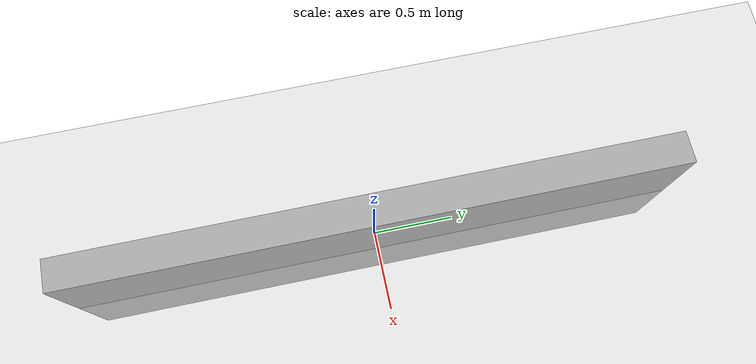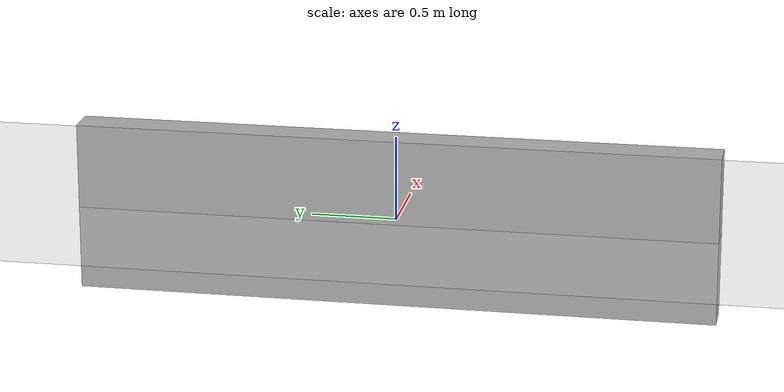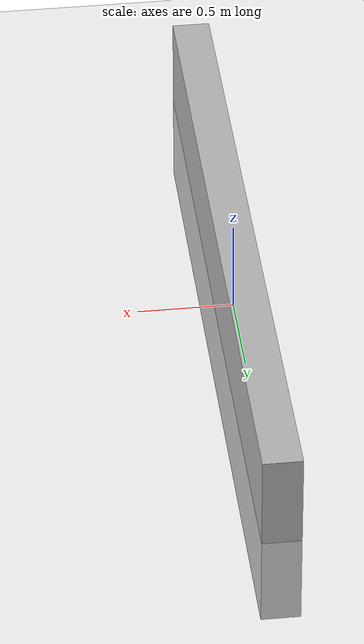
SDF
<?xml version="1.0" ?>
<sdf version="1.4">
  <!-- We use a custom world for the rover so that the camera angle is launched correctly -->

  <world name="default">
    <include>
      <uri>model://ground_plane</uri>
    </include>

    <!-- Global light source -->
    <include>
      <uri>model://sun</uri>
    </include>

    <model name="arena-wall-sieve">
      <pose>0 0 0 0 0 0</pose>
      <link name="link">
        <collision name="collision">
          <geometry>
            <box>
              <size>.2 3.78 1</size>
            </box>
          </geometry>
        </collision>
        <visual name="visual">
          <geometry>
            <box>
              <size>.2 3.78 1</size>
            </box>
          </geometry>
          <material>
            <script>Gazebo/WoodPallet</script>
          </material>
        </visual>
      </link>
    </model>

    <!-- Focus camera on tall pendulum -->
    <gui fullscreen='0'>
      <camera name='user_camera'>
        <pose>4.927360 -4.376610 3.740080 0.000000 0.275643 2.356190</pose>
        <view_controller>orbit</view_controller>
      </camera>
    </gui>

  </world>
</sdf>
